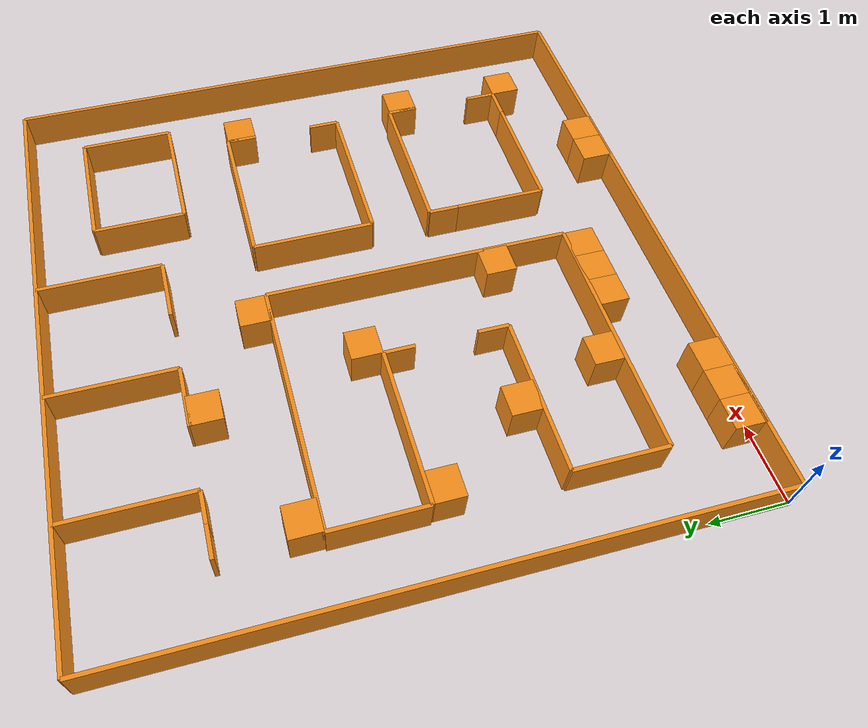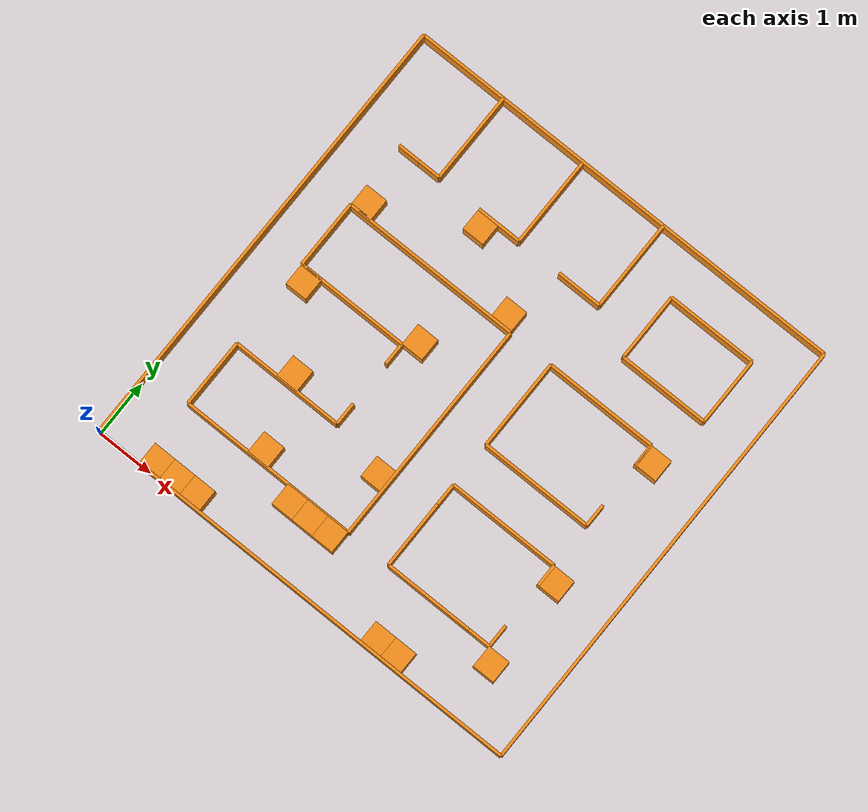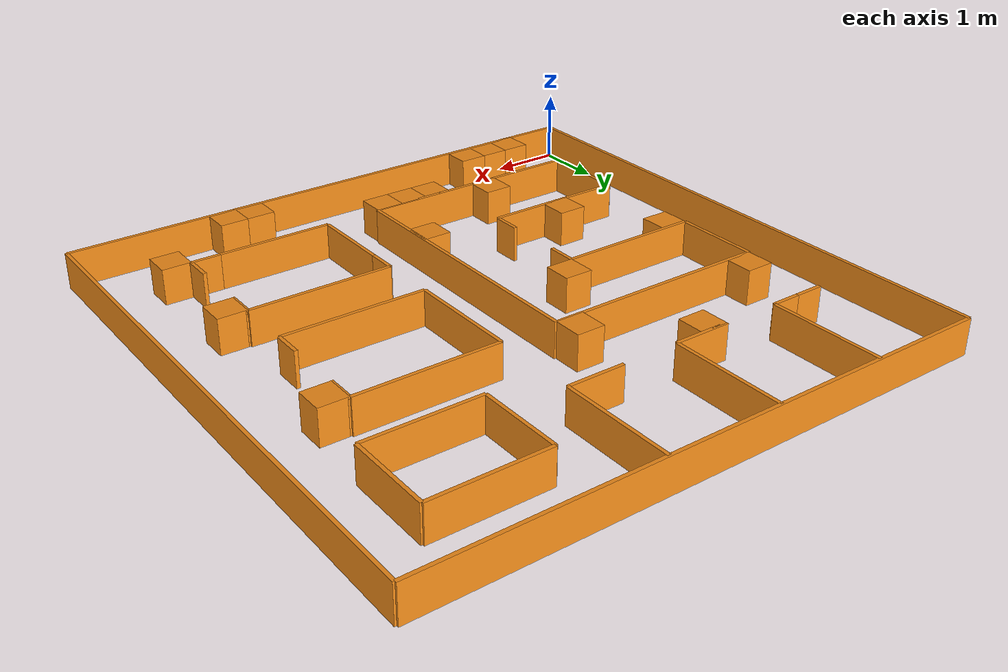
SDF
<sdf version="1.6">
 <world name="default">
  <model name="box_55">
   <pose>1.8 2.6 0.25 0 0 0</pose>
   <link name="link">
    <inertial>
     <mass>1</mass>
     <inertia><ixx>0</ixx><ixy>0</ixy><ixz>0</ixz><iyy>0</iyy><iyz>0</iyz><izz>0</izz></inertia>
    </inertial>
    <collision name="collision"><geometry><box><size>0.4 0.4 0.5</size></box></geometry></collision>
    <visual name="visual">
     <geometry><box><size>0.4 0.4 0.5</size></box></geometry>
     <material>
      <script><name>Gazebo/Orange</name><uri>file://media/materials/scripts/gazebo.material</uri></script>
     </material>
    </visual>
   </link>
   <static>1</static>
  </model>
  <model name="box_54">
   <pose>2.2 1.4000000000000001 0.25 0 0 0</pose>
   <link name="link">
    <inertial>
     <mass>1</mass>
     <inertia><ixx>0</ixx><ixy>0</ixy><ixz>0</ixz><iyy>0</iyy><iyz>0</iyz><izz>0</izz></inertia>
    </inertial>
    <collision name="collision"><geometry><box><size>0.4 0.4 0.5</size></box></geometry></collision>
    <visual name="visual">
     <geometry><box><size>0.4 0.4 0.5</size></box></geometry>
     <material>
      <script><name>Gazebo/Orange</name><uri>file://media/materials/scripts/gazebo.material</uri></script>
     </material>
    </visual>
   </link>
   <static>1</static>
  </model>
  <model name="box_53">
   <pose>3.8000000000000003 2.2 0.25 0 0 0</pose>
   <link name="link">
    <inertial>
     <mass>1</mass>
     <inertia><ixx>0</ixx><ixy>0</ixy><ixz>0</ixz><iyy>0</iyy><iyz>0</iyz><izz>0</izz></inertia>
    </inertial>
    <collision name="collision"><geometry><box><size>0.4 0.4 0.5</size></box></geometry></collision>
    <visual name="visual">
     <geometry><box><size>0.4 0.4 0.5</size></box></geometry>
     <material>
      <script><name>Gazebo/Orange</name><uri>file://media/materials/scripts/gazebo.material</uri></script>
     </material>
    </visual>
   </link>
   <static>1</static>
  </model>
  <model name="box_52">
   <pose>3.0 4.2 0.25 0 0 0</pose>
   <link name="link">
    <inertial>
     <mass>1</mass>
     <inertia><ixx>0</ixx><ixy>0</ixy><ixz>0</ixz><iyy>0</iyy><iyz>0</iyz><izz>0</izz></inertia>
    </inertial>
    <collision name="collision"><geometry><box><size>0.4 0.4 0.5</size></box></geometry></collision>
    <visual name="visual">
     <geometry><box><size>0.4 0.4 0.5</size></box></geometry>
     <material>
      <script><name>Gazebo/Orange</name><uri>file://media/materials/scripts/gazebo.material</uri></script>
     </material>
    </visual>
   </link>
   <static>1</static>
  </model>
  <model name="box_51">
   <pose>5.800000000000001 0.2 0.25 0 0 0</pose>
   <link name="link">
    <inertial>
     <mass>1</mass>
     <inertia><ixx>0</ixx><ixy>0</ixy><ixz>0</ixz><iyy>0</iyy><iyz>0</iyz><izz>0</izz></inertia>
    </inertial>
    <collision name="collision"><geometry><box><size>0.4 0.4 0.5</size></box></geometry></collision>
    <visual name="visual">
     <geometry><box><size>0.4 0.4 0.5</size></box></geometry>
     <material>
      <script><name>Gazebo/Orange</name><uri>file://media/materials/scripts/gazebo.material</uri></script>
     </material>
    </visual>
   </link>
   <static>1</static>
  </model>
  <model name="box_50">
   <pose>5.4 0.2 0.25 0 0 0</pose>
   <link name="link">
    <inertial>
     <mass>1</mass>
     <inertia><ixx>0</ixx><ixy>0</ixy><ixz>0</ixz><iyy>0</iyy><iyz>0</iyz><izz>0</izz></inertia>
    </inertial>
    <collision name="collision"><geometry><box><size>0.4 0.4 0.5</size></box></geometry></collision>
    <visual name="visual">
     <geometry><box><size>0.4 0.4 0.5</size></box></geometry>
     <material>
      <script><name>Gazebo/Orange</name><uri>file://media/materials/scripts/gazebo.material</uri></script>
     </material>
    </visual>
   </link>
   <static>1</static>
  </model>
  <model name="box_49">
   <pose>7.0 1.0 0.25 0 0 0</pose>
   <link name="link">
    <inertial>
     <mass>1</mass>
     <inertia><ixx>0</ixx><ixy>0</ixy><ixz>0</ixz><iyy>0</iyy><iyz>0</iyz><izz>0</izz></inertia>
    </inertial>
    <collision name="collision"><geometry><box><size>0.4 0.4 0.5</size></box></geometry></collision>
    <visual name="visual">
     <geometry><box><size>0.4 0.4 0.5</size></box></geometry>
     <material>
      <script><name>Gazebo/Orange</name><uri>file://media/materials/scripts/gazebo.material</uri></script>
     </material>
    </visual>
   </link>
   <static>1</static>
  </model>
  <model name="box_48">
   <pose>7.0 5.0 0.25 0 0 0</pose>
   <link name="link">
    <inertial>
     <mass>1</mass>
     <inertia><ixx>0</ixx><ixy>0</ixy><ixz>0</ixz><iyy>0</iyy><iyz>0</iyz><izz>0</izz></inertia>
    </inertial>
    <collision name="collision"><geometry><box><size>0.4 0.4 0.5</size></box></geometry></collision>
    <visual name="visual">
     <geometry><box><size>0.4 0.4 0.5</size></box></geometry>
     <material>
      <script><name>Gazebo/Orange</name><uri>file://media/materials/scripts/gazebo.material</uri></script>
     </material>
    </visual>
   </link>
   <static>1</static>
  </model>
  <model name="box_47">
   <pose>7.0 2.6 0.25 0 0 0</pose>
   <link name="link">
    <inertial>
     <mass>1</mass>
     <inertia><ixx>0</ixx><ixy>0</ixy><ixz>0</ixz><iyy>0</iyy><iyz>0</iyz><izz>0</izz></inertia>
    </inertial>
    <collision name="collision"><geometry><box><size>0.4 0.4 0.5</size></box></geometry></collision>
    <visual name="visual">
     <geometry><box><size>0.4 0.4 0.5</size></box></geometry>
     <material>
      <script><name>Gazebo/Orange</name><uri>file://media/materials/scripts/gazebo.material</uri></script>
     </material>
    </visual>
   </link>
   <static>1</static>
  </model>
  <model name="box_46">
   <pose>3.0 1.0 0.25 0 0 0</pose>
   <link name="link">
    <inertial>
     <mass>1</mass>
     <inertia><ixx>0</ixx><ixy>0</ixy><ixz>0</ixz><iyy>0</iyy><iyz>0</iyz><izz>0</izz></inertia>
    </inertial>
    <collision name="collision"><geometry><box><size>0.4 0.4 0.5</size></box></geometry></collision>
    <visual name="visual">
     <geometry><box><size>0.4 0.4 0.5</size></box></geometry>
     <material>
      <script><name>Gazebo/Orange</name><uri>file://media/materials/scripts/gazebo.material</uri></script>
     </material>
    </visual>
   </link>
   <static>1</static>
  </model>
  <model name="box_45">
   <pose>1.0 0.2 0.25 0 0 0</pose>
   <link name="link">
    <inertial>
     <mass>1</mass>
     <inertia><ixx>0</ixx><ixy>0</ixy><ixz>0</ixz><iyy>0</iyy><iyz>0</iyz><izz>0</izz></inertia>
    </inertial>
    <collision name="collision"><geometry><box><size>0.4 0.4 0.5</size></box></geometry></collision>
    <visual name="visual">
     <geometry><box><size>0.4 0.4 0.5</size></box></geometry>
     <material>
      <script><name>Gazebo/Orange</name><uri>file://media/materials/scripts/gazebo.material</uri></script>
     </material>
    </visual>
   </link>
   <static>1</static>
  </model>
  <model name="box_44">
   <pose>1.4000000000000001 0.2 0.25 0 0 0</pose>
   <link name="link">
    <inertial>
     <mass>1</mass>
     <inertia><ixx>0</ixx><ixy>0</ixy><ixz>0</ixz><iyy>0</iyy><iyz>0</iyz><izz>0</izz></inertia>
    </inertial>
    <collision name="collision"><geometry><box><size>0.4 0.4 0.5</size></box></geometry></collision>
    <visual name="visual">
     <geometry><box><size>0.4 0.4 0.5</size></box></geometry>
     <material>
      <script><name>Gazebo/Orange</name><uri>file://media/materials/scripts/gazebo.material</uri></script>
     </material>
    </visual>
   </link>
   <static>1</static>
  </model>
  <model name="box_43">
   <pose>1.8 0.2 0.25 0 0 0</pose>
   <link name="link">
    <inertial>
     <mass>1</mass>
     <inertia><ixx>0</ixx><ixy>0</ixy><ixz>0</ixz><iyy>0</iyy><iyz>0</iyz><izz>0</izz></inertia>
    </inertial>
    <collision name="collision"><geometry><box><size>0.4 0.4 0.5</size></box></geometry></collision>
    <visual name="visual">
     <geometry><box><size>0.4 0.4 0.5</size></box></geometry>
     <material>
      <script><name>Gazebo/Orange</name><uri>file://media/materials/scripts/gazebo.material</uri></script>
     </material>
    </visual>
   </link>
   <static>1</static>
  </model>
  <model name="box_42">
   <pose>3.8000000000000003 1.0 0.25 0 0 0</pose>
   <link name="link">
    <inertial>
     <mass>1</mass>
     <inertia><ixx>0</ixx><ixy>0</ixy><ixz>0</ixz><iyy>0</iyy><iyz>0</iyz><izz>0</izz></inertia>
    </inertial>
    <collision name="collision"><geometry><box><size>0.4 0.4 0.5</size></box></geometry></collision>
    <visual name="visual">
     <geometry><box><size>0.4 0.4 0.5</size></box></geometry>
     <material>
      <script><name>Gazebo/Orange</name><uri>file://media/materials/scripts/gazebo.material</uri></script>
     </material>
    </visual>
   </link>
   <static>1</static>
  </model>
  <model name="box_41">
   <pose>3.4000000000000004 1.0 0.25 0 0 0</pose>
   <link name="link">
    <inertial>
     <mass>1</mass>
     <inertia><ixx>0</ixx><ixy>0</ixy><ixz>0</ixz><iyy>0</iyy><iyz>0</iyz><izz>0</izz></inertia>
    </inertial>
    <collision name="collision"><geometry><box><size>0.4 0.4 0.5</size></box></geometry></collision>
    <visual name="visual">
     <geometry><box><size>0.4 0.4 0.5</size></box></geometry>
     <material>
      <script><name>Gazebo/Orange</name><uri>file://media/materials/scripts/gazebo.material</uri></script>
     </material>
    </visual>
   </link>
   <static>1</static>
  </model>
  <model name="box_40">
   <pose>3.8000000000000003 5.4 0.25 0 0 0</pose>
   <link name="link">
    <inertial>
     <mass>1</mass>
     <inertia><ixx>0</ixx><ixy>0</ixy><ixz>0</ixz><iyy>0</iyy><iyz>0</iyz><izz>0</izz></inertia>
    </inertial>
    <collision name="collision"><geometry><box><size>0.4 0.4 0.5</size></box></geometry></collision>
    <visual name="visual">
     <geometry><box><size>0.4 0.4 0.5</size></box></geometry>
     <material>
      <script><name>Gazebo/Orange</name><uri>file://media/materials/scripts/gazebo.material</uri></script>
     </material>
    </visual>
   </link>
   <static>1</static>
  </model>
  <model name="box_39">
   <pose>2.6 6.2 0.25 0 0 0</pose>
   <link name="link">
    <inertial>
     <mass>1</mass>
     <inertia><ixx>0</ixx><ixy>0</ixy><ixz>0</ixz><iyy>0</iyy><iyz>0</iyz><izz>0</izz></inertia>
    </inertial>
    <collision name="collision"><geometry><box><size>0.4 0.4 0.5</size></box></geometry></collision>
    <visual name="visual">
     <geometry><box><size>0.4 0.4 0.5</size></box></geometry>
     <material>
      <script><name>Gazebo/Orange</name><uri>file://media/materials/scripts/gazebo.material</uri></script>
     </material>
    </visual>
   </link>
   <static>1</static>
  </model>
  <model name="box_38">
   <pose>1.0 5.4 0.25 0 0 0</pose>
   <link name="link">
    <inertial>
     <mass>1</mass>
     <inertia><ixx>0</ixx><ixy>0</ixy><ixz>0</ixz><iyy>0</iyy><iyz>0</iyz><izz>0</izz></inertia>
    </inertial>
    <collision name="collision"><geometry><box><size>0.4 0.4 0.5</size></box></geometry></collision>
    <visual name="visual">
     <geometry><box><size>0.4 0.4 0.5</size></box></geometry>
     <material>
      <script><name>Gazebo/Orange</name><uri>file://media/materials/scripts/gazebo.material</uri></script>
     </material>
    </visual>
   </link>
   <static>1</static>
  </model>
  <model name="box_37">
   <pose>1.0 3.8000000000000003 0.25 0 0 0</pose>
   <link name="link">
    <inertial>
     <mass>1</mass>
     <inertia><ixx>0</ixx><ixy>0</ixy><ixz>0</ixz><iyy>0</iyy><iyz>0</iyz><izz>0</izz></inertia>
    </inertial>
    <collision name="collision"><geometry><box><size>0.4 0.4 0.5</size></box></geometry></collision>
    <visual name="visual">
     <geometry><box><size>0.4 0.4 0.5</size></box></geometry>
     <material>
      <script><name>Gazebo/Orange</name><uri>file://media/materials/scripts/gazebo.material</uri></script>
     </material>
    </visual>
   </link>
   <static>1</static>
  </model>
  <model name="box_36">
   <pose>6.4 7.2 0.25 0 0 -0.0</pose>
   <link name="link">
    <inertial>
     <mass>1</mass>
     <inertia><ixx>0</ixx><ixy>0</ixy><ixz>0</ixz><iyy>0</iyy><iyz>0</iyz><izz>0</izz></inertia>
    </inertial>
    <collision name="collision"><geometry><box><size>1.6 0.05 0.5</size></box></geometry></collision>
    <visual name="visual">
     <geometry><box><size>1.6 0.05 0.5</size></box></geometry>
     <material>
      <script><name>Gazebo/Orange</name><uri>file://media/materials/scripts/gazebo.material</uri></script>
     </material>
    </visual>
   </link>
   <static>1</static>
  </model>
  <model name="box_35">
   <pose>7.2 6.6000000000000005 0.25 0 0 -1.5707963267948966</pose>
   <link name="link">
    <inertial>
     <mass>1</mass>
     <inertia><ixx>0</ixx><ixy>0</ixy><ixz>0</ixz><iyy>0</iyy><iyz>0</iyz><izz>0</izz></inertia>
    </inertial>
    <collision name="collision">
     <geometry><box><size>1.2000000000000002 0.05 0.5</size></box></geometry>
    </collision>
    <visual name="visual">
     <geometry><box><size>1.2000000000000002 0.05 0.5</size></box></geometry>
     <material>
      <script><name>Gazebo/Orange</name><uri>file://media/materials/scripts/gazebo.material</uri></script>
     </material>
    </visual>
   </link>
   <static>1</static>
  </model>
  <model name="box_34">
   <pose>6.4 6.0 0.25 0 0 -3.141592653589793</pose>
   <link name="link">
    <inertial>
     <mass>1</mass>
     <inertia><ixx>0</ixx><ixy>0</ixy><ixz>0</ixz><iyy>0</iyy><iyz>0</iyz><izz>0</izz></inertia>
    </inertial>
    <collision name="collision"><geometry><box><size>1.6 0.05 0.5</size></box></geometry></collision>
    <visual name="visual">
     <geometry><box><size>1.6 0.05 0.5</size></box></geometry>
     <material>
      <script><name>Gazebo/Orange</name><uri>file://media/materials/scripts/gazebo.material</uri></script>
     </material>
    </visual>
   </link>
   <static>1</static>
  </model>
  <model name="box_33">
   <pose>5.6000000000000005 6.6000000000000005 0.25 0 0 1.5707963267948966</pose>
   <link name="link">
    <inertial>
     <mass>1</mass>
     <inertia><ixx>0</ixx><ixy>0</ixy><ixz>0</ixz><iyy>0</iyy><iyz>0</iyz><izz>0</izz></inertia>
    </inertial>
    <collision name="collision">
     <geometry><box><size>1.2000000000000002 0.05 0.5</size></box></geometry>
    </collision>
    <visual name="visual">
     <geometry><box><size>1.2000000000000002 0.05 0.5</size></box></geometry>
     <material>
      <script><name>Gazebo/Orange</name><uri>file://media/materials/scripts/gazebo.material</uri></script>
     </material>
    </visual>
   </link>
   <static>1</static>
  </model>
  <model name="box_32">
   <pose>6.800000000000001 1.4000000000000001 0.25 0 0 1.5707963267948966</pose>
   <link name="link">
    <inertial>
     <mass>1</mass>
     <inertia><ixx>0</ixx><ixy>0</ixy><ixz>0</ixz><iyy>0</iyy><iyz>0</iyz><izz>0</izz></inertia>
    </inertial>
    <collision name="collision"><geometry><box><size>0.4 0.05 0.5</size></box></geometry></collision>
    <visual name="visual">
     <geometry><box><size>0.4 0.05 0.5</size></box></geometry>
     <material>
      <script><name>Gazebo/Orange</name><uri>file://media/materials/scripts/gazebo.material</uri></script>
     </material>
    </visual>
   </link>
   <static>1</static>
  </model>
  <model name="box_31">
   <pose>6.800000000000001 2.6 0.25 0 0 -1.5707963267948966</pose>
   <link name="link">
    <inertial>
     <mass>1</mass>
     <inertia><ixx>0</ixx><ixy>0</ixy><ixz>0</ixz><iyy>0</iyy><iyz>0</iyz><izz>0</izz></inertia>
    </inertial>
    <collision name="collision"><geometry><box><size>0.4 0.05 0.5</size></box></geometry></collision>
    <visual name="visual">
     <geometry><box><size>0.4 0.05 0.5</size></box></geometry>
     <material>
      <script><name>Gazebo/Orange</name><uri>file://media/materials/scripts/gazebo.material</uri></script>
     </material>
    </visual>
   </link>
   <static>1</static>
  </model>
  <model name="box_30">
   <pose>5.800000000000001 2.8000000000000003 0.25 0 0 -0.0</pose>
   <link name="link">
    <inertial>
     <mass>1</mass>
     <inertia><ixx>0</ixx><ixy>0</ixy><ixz>0</ixz><iyy>0</iyy><iyz>0</iyz><izz>0</izz></inertia>
    </inertial>
    <collision name="collision"><geometry><box><size>2.0 0.05 0.5</size></box></geometry></collision>
    <visual name="visual">
     <geometry><box><size>2.0 0.05 0.5</size></box></geometry>
     <material>
      <script><name>Gazebo/Orange</name><uri>file://media/materials/scripts/gazebo.material</uri></script>
     </material>
    </visual>
   </link>
   <static>1</static>
  </model>
  <model name="box_29">
   <pose>4.800000000000001 2.6 0.25 0 0 1.5707963267948966</pose>
   <link name="link">
    <inertial>
     <mass>1</mass>
     <inertia><ixx>0</ixx><ixy>0</ixy><ixz>0</ixz><iyy>0</iyy><iyz>0</iyz><izz>0</izz></inertia>
    </inertial>
    <collision name="collision"><geometry><box><size>0.4 0.05 0.5</size></box></geometry></collision>
    <visual name="visual">
     <geometry><box><size>0.4 0.05 0.5</size></box></geometry>
     <material>
      <script><name>Gazebo/Orange</name><uri>file://media/materials/scripts/gazebo.material</uri></script>
     </material>
    </visual>
   </link>
   <static>1</static>
  </model>
  <model name="box_28">
   <pose>6.6000000000000005 1.2000000000000002 0.25 0 0 -0.0</pose>
   <link name="link">
    <inertial>
     <mass>1</mass>
     <inertia><ixx>0</ixx><ixy>0</ixy><ixz>0</ixz><iyy>0</iyy><iyz>0</iyz><izz>0</izz></inertia>
    </inertial>
    <collision name="collision"><geometry><box><size>0.4 0.05 0.5</size></box></geometry></collision>
    <visual name="visual">
     <geometry><box><size>0.4 0.05 0.5</size></box></geometry>
     <material>
      <script><name>Gazebo/Orange</name><uri>file://media/materials/scripts/gazebo.material</uri></script>
     </material>
    </visual>
   </link>
   <static>1</static>
  </model>
  <model name="box_27">
   <pose>4.800000000000001 1.8 0.25 0 0 1.5707963267948966</pose>
   <link name="link">
    <inertial>
     <mass>1</mass>
     <inertia><ixx>0</ixx><ixy>0</ixy><ixz>0</ixz><iyy>0</iyy><iyz>0</iyz><izz>0</izz></inertia>
    </inertial>
    <collision name="collision">
     <geometry><box><size>1.2000000000000002 0.05 0.5</size></box></geometry>
    </collision>
    <visual name="visual">
     <geometry><box><size>1.2000000000000002 0.05 0.5</size></box></geometry>
     <material>
      <script><name>Gazebo/Orange</name><uri>file://media/materials/scripts/gazebo.material</uri></script>
     </material>
    </visual>
   </link>
   <static>1</static>
  </model>
  <model name="box_26">
   <pose>5.6000000000000005 1.2000000000000002 0.25 0 0 -3.141592653589793</pose>
   <link name="link">
    <inertial>
     <mass>1</mass>
     <inertia><ixx>0</ixx><ixy>0</ixy><ixz>0</ixz><iyy>0</iyy><iyz>0</iyz><izz>0</izz></inertia>
    </inertial>
    <collision name="collision"><geometry><box><size>1.6 0.05 0.5</size></box></geometry></collision>
    <visual name="visual">
     <geometry><box><size>1.6 0.05 0.5</size></box></geometry>
     <material>
      <script><name>Gazebo/Orange</name><uri>file://media/materials/scripts/gazebo.material</uri></script>
     </material>
    </visual>
   </link>
   <static>1</static>
  </model>
  <model name="box_25">
   <pose>6.800000000000001 3.8000000000000003 0.25 0 0 1.5707963267948966</pose>
   <link name="link">
    <inertial>
     <mass>1</mass>
     <inertia><ixx>0</ixx><ixy>0</ixy><ixz>0</ixz><iyy>0</iyy><iyz>0</iyz><izz>0</izz></inertia>
    </inertial>
    <collision name="collision"><geometry><box><size>0.4 0.05 0.5</size></box></geometry></collision>
    <visual name="visual">
     <geometry><box><size>0.4 0.05 0.5</size></box></geometry>
     <material>
      <script><name>Gazebo/Orange</name><uri>file://media/materials/scripts/gazebo.material</uri></script>
     </material>
    </visual>
   </link>
   <static>1</static>
  </model>
  <model name="box_24">
   <pose>6.800000000000001 5.0 0.25 0 0 1.5707963267948966</pose>
   <link name="link">
    <inertial>
     <mass>1</mass>
     <inertia><ixx>0</ixx><ixy>0</ixy><ixz>0</ixz><iyy>0</iyy><iyz>0</iyz><izz>0</izz></inertia>
    </inertial>
    <collision name="collision"><geometry><box><size>0.4 0.05 0.5</size></box></geometry></collision>
    <visual name="visual">
     <geometry><box><size>0.4 0.05 0.5</size></box></geometry>
     <material>
      <script><name>Gazebo/Orange</name><uri>file://media/materials/scripts/gazebo.material</uri></script>
     </material>
    </visual>
   </link>
   <static>1</static>
  </model>
  <model name="box_23">
   <pose>5.800000000000001 5.2 0.25 0 0 -3.141592653589793</pose>
   <link name="link">
    <inertial>
     <mass>1</mass>
     <inertia><ixx>0</ixx><ixy>0</ixy><ixz>0</ixz><iyy>0</iyy><iyz>0</iyz><izz>0</izz></inertia>
    </inertial>
    <collision name="collision"><geometry><box><size>2.0 0.05 0.5</size></box></geometry></collision>
    <visual name="visual">
     <geometry><box><size>2.0 0.05 0.5</size></box></geometry>
     <material>
      <script><name>Gazebo/Orange</name><uri>file://media/materials/scripts/gazebo.material</uri></script>
     </material>
    </visual>
   </link>
   <static>1</static>
  </model>
  <model name="box_22">
   <pose>5.800000000000001 3.6 0.25 0 0 -3.141592653589793</pose>
   <link name="link">
    <inertial>
     <mass>1</mass>
     <inertia><ixx>0</ixx><ixy>0</ixy><ixz>0</ixz><iyy>0</iyy><iyz>0</iyz><izz>0</izz></inertia>
    </inertial>
    <collision name="collision"><geometry><box><size>2.0 0.05 0.5</size></box></geometry></collision>
    <visual name="visual">
     <geometry><box><size>2.0 0.05 0.5</size></box></geometry>
     <material>
      <script><name>Gazebo/Orange</name><uri>file://media/materials/scripts/gazebo.material</uri></script>
     </material>
    </visual>
   </link>
   <static>1</static>
  </model>
  <model name="box_21">
   <pose>4.800000000000001 4.4 0.25 0 0 1.5707963267948966</pose>
   <link name="link">
    <inertial>
     <mass>1</mass>
     <inertia><ixx>0</ixx><ixy>0</ixy><ixz>0</ixz><iyy>0</iyy><iyz>0</iyz><izz>0</izz></inertia>
    </inertial>
    <collision name="collision"><geometry><box><size>1.6 0.05 0.5</size></box></geometry></collision>
    <visual name="visual">
     <geometry><box><size>1.6 0.05 0.5</size></box></geometry>
     <material>
      <script><name>Gazebo/Orange</name><uri>file://media/materials/scripts/gazebo.material</uri></script>
     </material>
    </visual>
   </link>
   <static>1</static>
  </model>
  <model name="box_20">
   <pose>2.4000000000000004 5.2 0.25 0 0 -0.0</pose>
   <link name="link">
    <inertial>
     <mass>1</mass>
     <inertia><ixx>0</ixx><ixy>0</ixy><ixz>0</ixz><iyy>0</iyy><iyz>0</iyz><izz>0</izz></inertia>
    </inertial>
    <collision name="collision"><geometry><box><size>3.2 0.05 0.5</size></box></geometry></collision>
    <visual name="visual">
     <geometry><box><size>3.2 0.05 0.5</size></box></geometry>
     <material>
      <script><name>Gazebo/Orange</name><uri>file://media/materials/scripts/gazebo.material</uri></script>
     </material>
    </visual>
   </link>
   <static>1</static>
  </model>
  <model name="box_19">
   <pose>2.4000000000000004 1.2000000000000002 0.25 0 0 -0.0</pose>
   <link name="link">
    <inertial>
     <mass>1</mass>
     <inertia><ixx>0</ixx><ixy>0</ixy><ixz>0</ixz><iyy>0</iyy><iyz>0</iyz><izz>0</izz></inertia>
    </inertial>
    <collision name="collision"><geometry><box><size>3.2 0.05 0.5</size></box></geometry></collision>
    <visual name="visual">
     <geometry><box><size>3.2 0.05 0.5</size></box></geometry>
     <material>
      <script><name>Gazebo/Orange</name><uri>file://media/materials/scripts/gazebo.material</uri></script>
     </material>
    </visual>
   </link>
   <static>1</static>
  </model>
  <model name="box_18">
   <pose>4.0 3.2 0.25 0 0 1.5707963267948966</pose>
   <link name="link">
    <inertial>
     <mass>1</mass>
     <inertia><ixx>0</ixx><ixy>0</ixy><ixz>0</ixz><iyy>0</iyy><iyz>0</iyz><izz>0</izz></inertia>
    </inertial>
    <collision name="collision"><geometry><box><size>4.0 0.05 0.5</size></box></geometry></collision>
    <visual name="visual">
     <geometry><box><size>4.0 0.05 0.5</size></box></geometry>
     <material>
      <script><name>Gazebo/Orange</name><uri>file://media/materials/scripts/gazebo.material</uri></script>
     </material>
    </visual>
   </link>
   <static>1</static>
  </model>
  <model name="box_17">
   <pose>2.8000000000000003 2.6 0.25 0 0 1.5707963267948966</pose>
   <link name="link">
    <inertial>
     <mass>1</mass>
     <inertia><ixx>0</ixx><ixy>0</ixy><ixz>0</ixz><iyy>0</iyy><iyz>0</iyz><izz>0</izz></inertia>
    </inertial>
    <collision name="collision"><geometry><box><size>0.4 0.05 0.5</size></box></geometry></collision>
    <visual name="visual">
     <geometry><box><size>0.4 0.05 0.5</size></box></geometry>
     <material>
      <script><name>Gazebo/Orange</name><uri>file://media/materials/scripts/gazebo.material</uri></script>
     </material>
    </visual>
   </link>
   <static>1</static>
  </model>
  <model name="box_16">
   <pose>2.8000000000000003 3.8000000000000003 0.25 0 0 -1.5707963267948966</pose>
   <link name="link">
    <inertial>
     <mass>1</mass>
     <inertia><ixx>0</ixx><ixy>0</ixy><ixz>0</ixz><iyy>0</iyy><iyz>0</iyz><izz>0</izz></inertia>
    </inertial>
    <collision name="collision"><geometry><box><size>0.4 0.05 0.5</size></box></geometry></collision>
    <visual name="visual">
     <geometry><box><size>0.4 0.05 0.5</size></box></geometry>
     <material>
      <script><name>Gazebo/Orange</name><uri>file://media/materials/scripts/gazebo.material</uri></script>
     </material>
    </visual>
   </link>
   <static>1</static>
  </model>
  <model name="box_15">
   <pose>1.8 2.4000000000000004 0.25 0 0 -3.141592653589793</pose>
   <link name="link">
    <inertial>
     <mass>1</mass>
     <inertia><ixx>0</ixx><ixy>0</ixy><ixz>0</ixz><iyy>0</iyy><iyz>0</iyz><izz>0</izz></inertia>
    </inertial>
    <collision name="collision"><geometry><box><size>2.0 0.05 0.5</size></box></geometry></collision>
    <visual name="visual">
     <geometry><box><size>2.0 0.05 0.5</size></box></geometry>
     <material>
      <script><name>Gazebo/Orange</name><uri>file://media/materials/scripts/gazebo.material</uri></script>
     </material>
    </visual>
   </link>
   <static>1</static>
  </model>
  <model name="box_14">
   <pose>1.8 4.0 0.25 0 0 -3.141592653589793</pose>
   <link name="link">
    <inertial>
     <mass>1</mass>
     <inertia><ixx>0</ixx><ixy>0</ixy><ixz>0</ixz><iyy>0</iyy><iyz>0</iyz><izz>0</izz></inertia>
    </inertial>
    <collision name="collision"><geometry><box><size>2.0 0.05 0.5</size></box></geometry></collision>
    <visual name="visual">
     <geometry><box><size>2.0 0.05 0.5</size></box></geometry>
     <material>
      <script><name>Gazebo/Orange</name><uri>file://media/materials/scripts/gazebo.material</uri></script>
     </material>
    </visual>
   </link>
   <static>1</static>
  </model>
  <model name="box_13">
   <pose>0.8 4.6000000000000005 0.25 0 0 1.5707963267948966</pose>
   <link name="link">
    <inertial>
     <mass>1</mass>
     <inertia><ixx>0</ixx><ixy>0</ixy><ixz>0</ixz><iyy>0</iyy><iyz>0</iyz><izz>0</izz></inertia>
    </inertial>
    <collision name="collision">
     <geometry><box><size>1.2000000000000002 0.05 0.5</size></box></geometry>
    </collision>
    <visual name="visual">
     <geometry><box><size>1.2000000000000002 0.05 0.5</size></box></geometry>
     <material>
      <script><name>Gazebo/Orange</name><uri>file://media/materials/scripts/gazebo.material</uri></script>
     </material>
    </visual>
   </link>
   <static>1</static>
  </model>
  <model name="box_12">
   <pose>0.8 1.8 0.25 0 0 -1.5707963267948966</pose>
   <link name="link">
    <inertial>
     <mass>1</mass>
     <inertia><ixx>0</ixx><ixy>0</ixy><ixz>0</ixz><iyy>0</iyy><iyz>0</iyz><izz>0</izz></inertia>
    </inertial>
    <collision name="collision">
     <geometry><box><size>1.2000000000000002 0.05 0.5</size></box></geometry>
    </collision>
    <visual name="visual">
     <geometry><box><size>1.2000000000000002 0.05 0.5</size></box></geometry>
     <material>
      <script><name>Gazebo/Orange</name><uri>file://media/materials/scripts/gazebo.material</uri></script>
     </material>
    </visual>
   </link>
   <static>1</static>
  </model>
  <model name="box_11">
   <pose>4.800000000000001 7.2 0.25 0 0 -1.5707963267948966</pose>
   <link name="link">
    <inertial>
     <mass>1</mass>
     <inertia><ixx>0</ixx><ixy>0</ixy><ixz>0</ixz><iyy>0</iyy><iyz>0</iyz><izz>0</izz></inertia>
    </inertial>
    <collision name="collision"><geometry><box><size>1.6 0.05 0.5</size></box></geometry></collision>
    <visual name="visual">
     <geometry><box><size>1.6 0.05 0.5</size></box></geometry>
     <material>
      <script><name>Gazebo/Orange</name><uri>file://media/materials/scripts/gazebo.material</uri></script>
     </material>
    </visual>
   </link>
   <static>1</static>
  </model>
  <model name="box_10">
   <pose>4.4 6.4 0.25 0 0 -3.141592653589793</pose>
   <link name="link">
    <inertial>
     <mass>1</mass>
     <inertia><ixx>0</ixx><ixy>0</ixy><ixz>0</ixz><iyy>0</iyy><iyz>0</iyz><izz>0</izz></inertia>
    </inertial>
    <collision name="collision"><geometry><box><size>0.8 0.05 0.5</size></box></geometry></collision>
    <visual name="visual">
     <geometry><box><size>0.8 0.05 0.5</size></box></geometry>
     <material>
      <script><name>Gazebo/Orange</name><uri>file://media/materials/scripts/gazebo.material</uri></script>
     </material>
    </visual>
   </link>
   <static>1</static>
  </model>
  <model name="box_9">
   <pose>3.2 7.2 0.25 0 0 -1.5707963267948966</pose>
   <link name="link">
    <inertial>
     <mass>1</mass>
     <inertia><ixx>0</ixx><ixy>0</ixy><ixz>0</ixz><iyy>0</iyy><iyz>0</iyz><izz>0</izz></inertia>
    </inertial>
    <collision name="collision"><geometry><box><size>1.6 0.05 0.5</size></box></geometry></collision>
    <visual name="visual">
     <geometry><box><size>1.6 0.05 0.5</size></box></geometry>
     <material>
      <script><name>Gazebo/Orange</name><uri>file://media/materials/scripts/gazebo.material</uri></script>
     </material>
    </visual>
   </link>
   <static>1</static>
  </model>
  <model name="box_8">
   <pose>2.8000000000000003 6.4 0.25 0 0 -3.141592653589793</pose>
   <link name="link">
    <inertial>
     <mass>1</mass>
     <inertia><ixx>0</ixx><ixy>0</ixy><ixz>0</ixz><iyy>0</iyy><iyz>0</iyz><izz>0</izz></inertia>
    </inertial>
    <collision name="collision"><geometry><box><size>0.8 0.05 0.5</size></box></geometry></collision>
    <visual name="visual">
     <geometry><box><size>0.8 0.05 0.5</size></box></geometry>
     <material>
      <script><name>Gazebo/Orange</name><uri>file://media/materials/scripts/gazebo.material</uri></script>
     </material>
    </visual>
   </link>
   <static>1</static>
  </model>
  <model name="box_7">
   <pose>1.0 6.4 0.25 0 0 -3.141592653589793</pose>
   <link name="link">
    <inertial>
     <mass>1</mass>
     <inertia><ixx>0</ixx><ixy>0</ixy><ixz>0</ixz><iyy>0</iyy><iyz>0</iyz><izz>0</izz></inertia>
    </inertial>
    <collision name="collision"><geometry><box><size>0.4 0.05 0.5</size></box></geometry></collision>
    <visual name="visual">
     <geometry><box><size>0.4 0.05 0.5</size></box></geometry>
     <material>
      <script><name>Gazebo/Orange</name><uri>file://media/materials/scripts/gazebo.material</uri></script>
     </material>
    </visual>
   </link>
   <static>1</static>
  </model>
  <model name="box_6">
   <pose>1.6 7.2 0.25 0 0 -1.5707963267948966</pose>
   <link name="link">
    <inertial>
     <mass>1</mass>
     <inertia><ixx>0</ixx><ixy>0</ixy><ixz>0</ixz><iyy>0</iyy><iyz>0</iyz><izz>0</izz></inertia>
    </inertial>
    <collision name="collision"><geometry><box><size>1.6 0.05 0.5</size></box></geometry></collision>
    <visual name="visual">
     <geometry><box><size>1.6 0.05 0.5</size></box></geometry>
     <material>
      <script><name>Gazebo/Orange</name><uri>file://media/materials/scripts/gazebo.material</uri></script>
     </material>
    </visual>
   </link>
   <static>1</static>
  </model>
  <model name="box_5">
   <pose>1.4000000000000001 6.4 0.25 0 0 -3.141592653589793</pose>
   <link name="link">
    <inertial>
     <mass>1</mass>
     <inertia><ixx>0</ixx><ixy>0</ixy><ixz>0</ixz><iyy>0</iyy><iyz>0</iyz><izz>0</izz></inertia>
    </inertial>
    <collision name="collision"><geometry><box><size>0.4 0.05 0.5</size></box></geometry></collision>
    <visual name="visual">
     <geometry><box><size>0.4 0.05 0.5</size></box></geometry>
     <material>
      <script><name>Gazebo/Orange</name><uri>file://media/materials/scripts/gazebo.material</uri></script>
     </material>
    </visual>
   </link>
   <static>1</static>
  </model>
  <model name="box_4">
   <pose>4.0 0.0 0.25 0 0 -3.141592653589793</pose>
   <link name="link">
    <inertial>
     <mass>1</mass>
     <inertia><ixx>0</ixx><ixy>0</ixy><ixz>0</ixz><iyy>0</iyy><iyz>0</iyz><izz>0</izz></inertia>
    </inertial>
    <collision name="collision"><geometry><box><size>8.0 0.05 0.5</size></box></geometry></collision>
    <visual name="visual">
     <geometry><box><size>8.0 0.05 0.5</size></box></geometry>
     <material>
      <script><name>Gazebo/Orange</name><uri>file://media/materials/scripts/gazebo.material</uri></script>
     </material>
    </visual>
   </link>
   <static>1</static>
  </model>
  <model name="box_3">
   <pose>0.0 4.0 0.25 0 0 1.5707963267948966</pose>
   <link name="link">
    <inertial>
     <mass>1</mass>
     <inertia><ixx>0</ixx><ixy>0</ixy><ixz>0</ixz><iyy>0</iyy><iyz>0</iyz><izz>0</izz></inertia>
    </inertial>
    <collision name="collision"><geometry><box><size>8.0 0.05 0.5</size></box></geometry></collision>
    <visual name="visual">
     <geometry><box><size>8.0 0.05 0.5</size></box></geometry>
     <material>
      <script><name>Gazebo/Orange</name><uri>file://media/materials/scripts/gazebo.material</uri></script>
     </material>
    </visual>
   </link>
   <static>1</static>
  </model>
  <model name="box_2">
   <pose>4.0 8.0 0.25 0 0 -0.0</pose>
   <link name="link">
    <inertial>
     <mass>1</mass>
     <inertia><ixx>0</ixx><ixy>0</ixy><ixz>0</ixz><iyy>0</iyy><iyz>0</iyz><izz>0</izz></inertia>
    </inertial>
    <collision name="collision"><geometry><box><size>8.0 0.05 0.5</size></box></geometry></collision>
    <visual name="visual">
     <geometry><box><size>8.0 0.05 0.5</size></box></geometry>
     <material>
      <script><name>Gazebo/Orange</name><uri>file://media/materials/scripts/gazebo.material</uri></script>
     </material>
    </visual>
   </link>
   <static>1</static>
  </model>
  <model name="box_1">
   <pose>8.0 4.0 0.25 0 0 -1.5707963267948966</pose>
   <link name="link">
    <inertial>
     <mass>1</mass>
     <inertia><ixx>0</ixx><ixy>0</ixy><ixz>0</ixz><iyy>0</iyy><iyz>0</iyz><izz>0</izz></inertia>
    </inertial>
    <collision name="collision"><geometry><box><size>8.0 0.05 0.5</size></box></geometry></collision>
    <visual name="visual">
     <geometry><box><size>8.0 0.05 0.5</size></box></geometry>
     <material>
      <script><name>Gazebo/Orange</name><uri>file://media/materials/scripts/gazebo.material</uri></script>
     </material>
    </visual>
   </link>
   <static>1</static>
  </model>
  <light name="user_point_light_0" type="point">
   <pose>0 0 5 0 -0 0</pose>
   <diffuse>0.5 0.5 0.5 1</diffuse>
   <specular>0.1 0.1 0.1 1</specular>
   <attenuation>
    <range>1000</range>
    <constant>0.05</constant>
    <linear>0.01</linear>
    <quadratic>0.001</quadratic>
   </attenuation>
   <cast_shadows>0</cast_shadows>
   <direction>0 0 -1</direction>
  </light>
  <light name="user_point_light_1" type="point">
   <pose>20 0 5 0 -0 0</pose>
   <diffuse>0.5 0.5 0.5 1</diffuse>
   <specular>0.1 0.1 0.1 1</specular>
   <attenuation>
    <range>1000</range>
    <constant>0.05</constant>
    <linear>0.01</linear>
    <quadratic>0.001</quadratic>
   </attenuation>
   <cast_shadows>0</cast_shadows>
   <direction>0 0 -1</direction>
  </light>
  <light name="user_point_light_2" type="point">
   <pose>0 20 5 0 -0 0</pose>
   <diffuse>0.5 0.5 0.5 1</diffuse>
   <specular>0.1 0.1 0.1 1</specular>
   <attenuation>
    <range>1000</range>
    <constant>0.05</constant>
    <linear>0.01</linear>
    <quadratic>0.001</quadratic>
   </attenuation>
   <cast_shadows>0</cast_shadows>
   <direction>0 0 -1</direction>
  </light>
  <light name="user_point_light_3" type="point">
   <pose>20 20 5 0 -0 0</pose>
   <diffuse>0.5 0.5 0.5 1</diffuse>
   <specular>0.1 0.1 0.1 1</specular>
   <attenuation>
    <range>1000</range>
    <constant>0.05</constant>
    <linear>0.01</linear>
    <quadratic>0.001</quadratic>
   </attenuation>
   <cast_shadows>0</cast_shadows>
   <direction>0 0 -1</direction>
  </light>
  <light name="user_point_light_4" type="point">
   <pose>10 10 5 0 -0 0</pose>
   <diffuse>0.5 0.5 0.5 1</diffuse>
   <specular>0.1 0.1 0.1 1</specular>
   <attenuation>
    <range>1000</range>
    <constant>0.05</constant>
    <linear>0.01</linear>
    <quadratic>0.001</quadratic>
   </attenuation>
   <cast_shadows>0</cast_shadows>
   <direction>0 0 -1</direction>
  </light>
  <gravity>0 0 -9.8</gravity>
  <magnetic_field>6e-06 2.3e-05 -4.2e-05</magnetic_field>
  <atmosphere type="adiabatic"/>
  <physics name="default_physics" default="0" type="ode">
   <max_step_size>0.001</max_step_size>
   <real_time_factor>1</real_time_factor>
   <real_time_update_rate>1000</real_time_update_rate>
  </physics>
  <scene><ambient>0.4 0.4 0.4 1</ambient><background>0.7 0.7 0.7 1</background><shadows>1</shadows></scene>
  <audio><device>default</device></audio>
  <spherical_coordinates>
   <surface_model>EARTH_WGS84</surface_model>
   <latitude_deg>0</latitude_deg>
   <longitude_deg>0</longitude_deg>
   <elevation>0</elevation>
   <heading_deg>0</heading_deg>
  </spherical_coordinates>
 </world>
</sdf>
